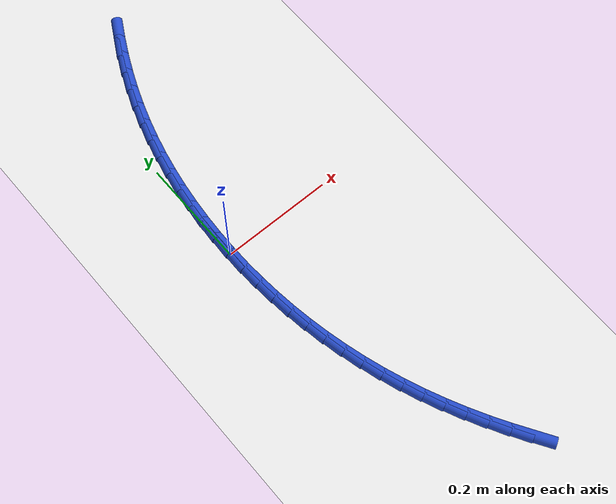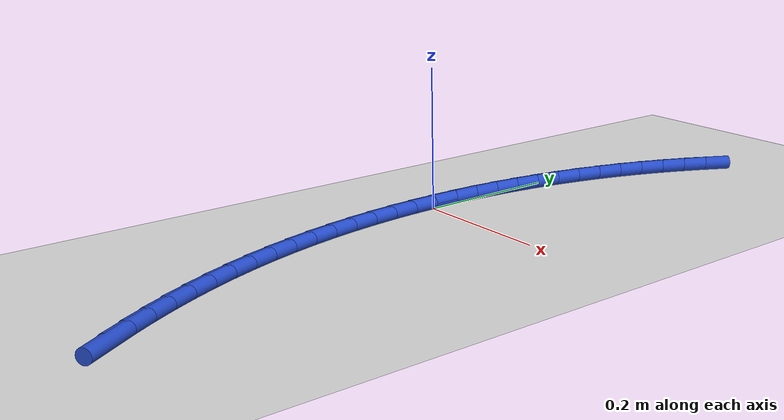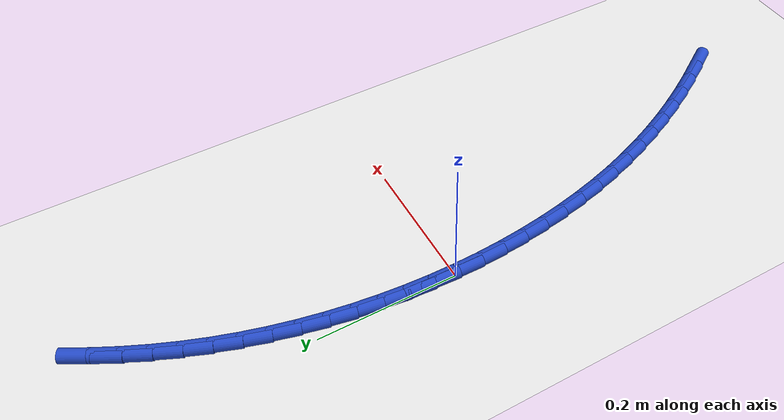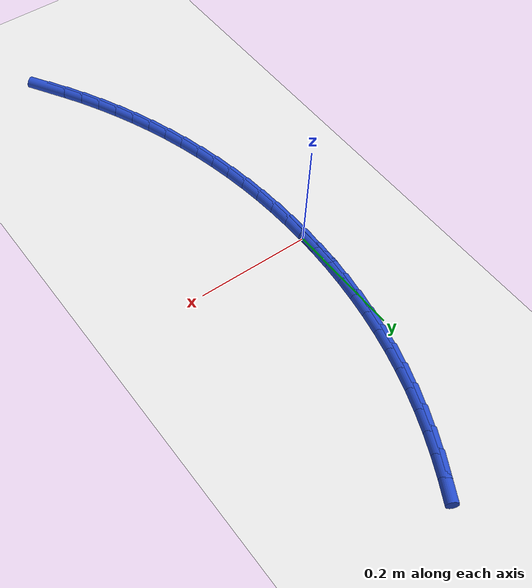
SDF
<sdf version="1.6">
 <world name="default">
  <model name="ground_plane">
   <static>1</static>
   <link name="link">
    <collision name="collision">
     <geometry><plane><normal>0 0 1</normal><size>100 100</size></plane></geometry>
     <surface><friction><ode><mu>100</mu><mu2>50</mu2></ode></friction></surface>
    </collision>
    <visual name="visual">
     <cast_shadows>0</cast_shadows>
     <geometry><plane><normal>0 0 1</normal><size>100 100</size></plane></geometry>
     <material>
      <script><uri>file://media/materials/scripts/gazebo.material</uri><name>Gazebo/WhiteGlow</name></script>
     </material>
    </visual>
   </link>
  </model>
  <model name="line">
   <link name="link_0">
    <pose>-2.7755575615628914e-17 6.938893903907228e-17 0.01 0 1.57 1.554966024899362</pose>
    <collision name="collision">
     <geometry><cylinder><radius>0.01</radius><length>0.08</length></cylinder></geometry>
    </collision>
    <visual name="visual">
     <material>
      <script><name>Gazebo/Blue</name><uri>file://media/materials/scripts/gazebo.material</uri></script>
     </material>
     <geometry><cylinder><radius>0.01</radius><length>0.08</length></cylinder></geometry>
    </visual>
   </link>
   <link name="link_1">
    <pose>0.0005712090992517886 0.03608025845099343 0.01 0 1.57 1.519783732723637</pose>
    <collision name="collision">
     <geometry><cylinder><radius>0.01</radius><length>0.08</length></cylinder></geometry>
    </collision>
    <visual name="visual">
     <material>
      <script><name>Gazebo/Blue</name><uri>file://media/materials/scripts/gazebo.material</uri></script>
     </material>
     <geometry><cylinder><radius>0.01</radius><length>0.08</length></cylinder></geometry>
    </visual>
   </link>
   <link name="link_2">
    <pose>0.0024117978563944482 0.07213002096325959 0.01 0 1.57 1.484111538467074</pose>
    <collision name="collision">
     <geometry><cylinder><radius>0.01</radius><length>0.08</length></cylinder></geometry>
    </collision>
    <visual name="visual">
     <material>
      <script><name>Gazebo/Blue</name><uri>file://media/materials/scripts/gazebo.material</uri></script>
     </material>
     <geometry><cylinder><radius>0.01</radius><length>0.08</length></cylinder></geometry>
    </visual>
   </link>
   <link name="link_3">
    <pose>0.005537018427434216 0.10809237154542371 0.01 0 1.57 1.4478751126077472</pose>
    <collision name="collision">
     <geometry><cylinder><radius>0.01</radius><length>0.08</length></cylinder></geometry>
    </collision>
    <visual name="visual">
     <material>
      <script><name>Gazebo/Blue</name><uri>file://media/materials/scripts/gazebo.material</uri></script>
     </material>
     <geometry><cylinder><radius>0.01</radius><length>0.08</length></cylinder></geometry>
    </visual>
   </link>
   <link name="link_4">
    <pose>0.009962122968377368 0.14391039420611088 0.01 0 1.57 1.4110036401615895</pose>
    <collision name="collision">
     <geometry><cylinder><radius>0.01</radius><length>0.08</length></cylinder></geometry>
    </collision>
    <visual name="visual">
     <material>
      <script><name>Gazebo/Blue</name><uri>file://media/materials/scripts/gazebo.material</uri></script>
     </material>
     <geometry><cylinder><radius>0.01</radius><length>0.08</length></cylinder></geometry>
    </visual>
   </link>
   <link name="link_5">
    <pose>0.01570236363523017 0.17952717295394618 0.01 0 1.57 1.3734305395378306</pose>
    <collision name="collision">
     <geometry><cylinder><radius>0.01</radius><length>0.08</length></cylinder></geometry>
    </collision>
    <visual name="visual">
     <material>
      <script><name>Gazebo/Blue</name><uri>file://media/materials/scripts/gazebo.material</uri></script>
     </material>
     <geometry><cylinder><radius>0.01</radius><length>0.08</length></cylinder></geometry>
    </visual>
   </link>
   <link name="link_6">
    <pose>0.02277299258399889 0.21488579179755463 0.01 0 1.57 1.3350943428944009</pose>
    <collision name="collision">
     <geometry><cylinder><radius>0.01</radius><length>0.08</length></cylinder></geometry>
    </collision>
    <visual name="visual">
     <material>
      <script><name>Gazebo/Blue</name><uri>file://media/materials/scripts/gazebo.material</uri></script>
     </material>
     <geometry><cylinder><radius>0.01</radius><length>0.08</length></cylinder></geometry>
    </visual>
   </link>
   <link name="link_7">
    <pose>0.03118926197068978 0.24992933474556134 0.01 0 1.57 1.2959397444328438</pose>
    <collision name="collision">
     <geometry><cylinder><radius>0.01</radius><length>0.08</length></cylinder></geometry>
    </collision>
    <visual name="visual">
     <material>
      <script><name>Gazebo/Blue</name><uri>file://media/materials/scripts/gazebo.material</uri></script>
     </material>
     <geometry><cylinder><radius>0.01</radius><length>0.08</length></cylinder></geometry>
    </visual>
   </link>
   <link name="link_8">
    <pose>0.04096642395130913 0.2846008858065915 0.01 0 1.57 1.2559188156809742</pose>
    <collision name="collision">
     <geometry><cylinder><radius>0.01</radius><length>0.08</length></cylinder></geometry>
    </collision>
    <visual name="visual">
     <material>
      <script><name>Gazebo/Blue</name><uri>file://media/materials/scripts/gazebo.material</uri></script>
     </material>
     <geometry><cylinder><radius>0.01</radius><length>0.08</length></cylinder></geometry>
    </visual>
   </link>
   <link name="link_9">
    <pose>0.052119730681863215 0.31884352898927004 0.01 0 1.57 1.2152198327130048</pose>
    <collision name="collision">
     <geometry><cylinder><radius>0.01</radius><length>0.08</length></cylinder></geometry>
    </collision>
    <visual name="visual">
     <material>
      <script><name>Gazebo/Blue</name><uri>file://media/materials/scripts/gazebo.material</uri></script>
     </material>
     <geometry><cylinder><radius>0.01</radius><length>0.08</length></cylinder></geometry>
    </visual>
   </link>
   <link name="link_10">
    <pose>0.06465711452558207 0.3526041667671321 0.01 0 1.57 1.1753621489340544</pose>
    <collision name="collision">
     <geometry><cylinder><radius>0.01</radius><length>0.08</length></cylinder></geometry>
    </collision>
    <visual name="visual">
     <material>
      <script><name>Gazebo/Blue</name><uri>file://media/materials/scripts/gazebo.material</uri></script>
     </material>
     <geometry><cylinder><radius>0.01</radius><length>0.08</length></cylinder></geometry>
    </visual>
   </link>
   <link name="link_11">
    <pose>0.07853695887582197 0.38585554947697476 0.01 0 1.57 1.1369782166927267</pose>
    <collision name="collision">
     <geometry><cylinder><radius>0.01</radius><length>0.08</length></cylinder></geometry>
    </collision>
    <visual name="visual">
     <material>
      <script><name>Gazebo/Blue</name><uri>file://media/materials/scripts/gazebo.material</uri></script>
     </material>
     <geometry><cylinder><radius>0.01</radius><length>0.08</length></cylinder></geometry>
    </visual>
   </link>
   <link name="link_12">
    <pose>0.09369710207800608 0.41858114504651694 0.01 0 1.57 1.1000509516635464</pose>
    <collision name="collision">
     <geometry><cylinder><radius>0.01</radius><length>0.08</length></cylinder></geometry>
    </collision>
    <visual name="visual">
     <material>
      <script><name>Gazebo/Blue</name><uri>file://media/materials/scripts/gazebo.material</uri></script>
     </material>
     <geometry><cylinder><radius>0.01</radius><length>0.08</length></cylinder></geometry>
    </visual>
   </link>
   <link name="link_13">
    <pose>0.11007531630858591 0.4507644559213801 0.01 0 1.57 1.0645469594919728</pose>
    <collision name="collision">
     <geometry><cylinder><radius>0.01</radius><length>0.08</length></cylinder></geometry>
    </collision>
    <visual name="visual">
     <material>
      <script><name>Gazebo/Blue</name><uri>file://media/materials/scripts/gazebo.material</uri></script>
     </material>
     <geometry><cylinder><radius>0.01</radius><length>0.08</length></cylinder></geometry>
    </visual>
   </link>
   <link name="link_174">
    <pose>0.16274000043594944 -0.545805390551361 0.01 0 1.57 -1.013572906376542</pose>
    <collision name="collision">
     <geometry><cylinder><radius>0.01</radius><length>0.08</length></cylinder></geometry>
    </collision>
    <visual name="visual">
     <material>
      <script><name>Gazebo/Blue</name><uri>file://media/materials/scripts/gazebo.material</uri></script>
     </material>
     <geometry><cylinder><radius>0.01</radius><length>0.08</length></cylinder></geometry>
    </visual>
   </link>
   <link name="link_175">
    <pose>0.1437149610362139 -0.5152719336722976 0.01 0 1.57 -1.0472756967551118</pose>
    <collision name="collision">
     <geometry><cylinder><radius>0.01</radius><length>0.08</length></cylinder></geometry>
    </collision>
    <visual name="visual">
     <material>
      <script><name>Gazebo/Blue</name><uri>file://media/materials/scripts/gazebo.material</uri></script>
     </material>
     <geometry><cylinder><radius>0.01</radius><length>0.08</length></cylinder></geometry>
    </visual>
   </link>
   <link name="link_176">
    <pose>0.12566901760827084 -0.4840098011796598 0.01 0 1.57 -1.0813757489117943</pose>
    <collision name="collision">
     <geometry><cylinder><radius>0.01</radius><length>0.08</length></cylinder></geometry>
    </collision>
    <visual name="visual">
     <material>
      <script><name>Gazebo/Blue</name><uri>file://media/materials/scripts/gazebo.material</uri></script>
     </material>
     <geometry><cylinder><radius>0.01</radius><length>0.08</length></cylinder></geometry>
    </visual>
   </link>
   <link name="link_177">
    <pose>0.10866026124913412 -0.4520771164240929 0.01 0 1.57 -1.1160142192103377</pose>
    <collision name="collision">
     <geometry><cylinder><radius>0.01</radius><length>0.08</length></cylinder></geometry>
    </collision>
    <visual name="visual">
     <material>
      <script><name>Gazebo/Blue</name><uri>file://media/materials/scripts/gazebo.material</uri></script>
     </material>
     <geometry><cylinder><radius>0.01</radius><length>0.08</length></cylinder></geometry>
    </visual>
   </link>
   <link name="link_178">
    <pose>0.09274678305581759 -0.4195320027562422 0.01 0 1.57 -1.1513300260748467</pose>
    <collision name="collision">
     <geometry><cylinder><radius>0.01</radius><length>0.08</length></cylinder></geometry>
    </collision>
    <visual name="visual">
     <material>
      <script><name>Gazebo/Blue</name><uri>file://media/materials/scripts/gazebo.material</uri></script>
     </material>
     <geometry><cylinder><radius>0.01</radius><length>0.08</length></cylinder></geometry>
    </visual>
   </link>
   <link name="link_179">
    <pose>0.07798667412533537 -0.3864325835267541 0.01 0 1.57 -1.187460075852762</pose>
    <collision name="collision">
     <geometry><cylinder><radius>0.01</radius><length>0.08</length></cylinder></geometry>
    </collision>
    <visual name="visual">
     <material>
      <script><name>Gazebo/Blue</name><uri>file://media/materials/scripts/gazebo.material</uri></script>
     </material>
     <geometry><cylinder><radius>0.01</radius><length>0.08</length></cylinder></geometry>
    </visual>
   </link>
   <link name="link_180">
    <pose>0.06443802555470073 -0.35283698208627257 0.01 0 1.57 -1.2245378513481633</pose>
    <collision name="collision">
     <geometry><cylinder><radius>0.01</radius><length>0.08</length></cylinder></geometry>
    </collision>
    <visual name="visual">
     <material>
      <script><name>Gazebo/Blue</name><uri>file://media/materials/scripts/gazebo.material</uri></script>
     </material>
     <geometry><cylinder><radius>0.01</radius><length>0.08</length></cylinder></geometry>
    </visual>
   </link>
   <link name="link_181">
    <pose>0.05215887291803072 -0.3188033059950069 0.01 0 1.57 -1.2622817753735918</pose>
    <collision name="collision">
     <geometry><cylinder><radius>0.01</radius><length>0.08</length></cylinder></geometry>
    </collision>
    <visual name="visual">
     <material>
      <script><name>Gazebo/Blue</name><uri>file://media/materials/scripts/gazebo.material</uri></script>
     </material>
     <geometry><cylinder><radius>0.01</radius><length>0.08</length></cylinder></geometry>
    </visual>
   </link>
   <link name="link_182">
    <pose>0.0411900122803991 -0.2843847599821897 0.01 0 1.57 -1.2997632562287225</pose>
    <collision name="collision">
     <geometry><cylinder><radius>0.01</radius><length>0.08</length></cylinder></geometry>
    </collision>
    <visual name="visual">
     <material>
      <script><name>Gazebo/Blue</name><uri>file://media/materials/scripts/gazebo.material</uri></script>
     </material>
     <geometry><cylinder><radius>0.01</radius><length>0.08</length></cylinder></geometry>
    </visual>
   </link>
   <link name="link_183">
    <pose>0.03153066278201712 -0.24962272450557457 0.01 0 1.57 -1.336844281815667</pose>
    <collision name="collision">
     <geometry><cylinder><radius>0.01</radius><length>0.08</length></cylinder></geometry>
    </collision>
    <visual name="visual">
     <material>
      <script><name>Gazebo/Blue</name><uri>file://media/materials/scripts/gazebo.material</uri></script>
     </material>
     <geometry><cylinder><radius>0.01</radius><length>0.08</length></cylinder></geometry>
    </visual>
   </link>
   <link name="link_184">
    <pose>0.023173901468214127 -0.21455683324155497 0.01 0 1.57 -1.3735348518202637</pose>
    <collision name="collision">
     <geometry><cylinder><radius>0.01</radius><length>0.08</length></cylinder></geometry>
    </collision>
    <visual name="visual">
     <material>
      <script><name>Gazebo/Blue</name><uri>file://media/materials/scripts/gazebo.material</uri></script>
     </material>
     <geometry><cylinder><radius>0.01</radius><length>0.08</length></cylinder></geometry>
    </visual>
   </link>
   <link name="link_185">
    <pose>0.01611280538431952 -0.1792267198665249 0.01 0 1.57 -1.4098492521555244</pose>
    <collision name="collision">
     <geometry><cylinder><radius>0.01</radius><length>0.08</length></cylinder></geometry>
    </collision>
    <visual name="visual">
     <material>
      <script><name>Gazebo/Blue</name><uri>file://media/materials/scripts/gazebo.material</uri></script>
     </material>
     <geometry><cylinder><radius>0.01</radius><length>0.08</length></cylinder></geometry>
    </visual>
   </link>
   <link name="link_186">
    <pose>0.010340451575662761 -0.1436720180568788 0.01 0 1.57 -1.445805607862557</pose>
    <collision name="collision">
     <geometry><cylinder><radius>0.01</radius><length>0.08</length></cylinder></geometry>
    </collision>
    <visual name="visual">
     <material>
      <script><name>Gazebo/Blue</name><uri>file://media/materials/scripts/gazebo.material</uri></script>
     </material>
     <geometry><cylinder><radius>0.01</radius><length>0.08</length></cylinder></geometry>
    </visual>
   </link>
   <link name="link_187">
    <pose>0.005849917087572976 -0.10793236148900896 0.01 0 1.57 -1.4814254395083142</pose>
    <collision name="collision">
     <geometry><cylinder><radius>0.01</radius><length>0.08</length></cylinder></geometry>
    </collision>
    <visual name="visual">
     <material>
      <script><name>Gazebo/Blue</name><uri>file://media/materials/scripts/gazebo.material</uri></script>
     </material>
     <geometry><cylinder><radius>0.01</radius><length>0.08</length></cylinder></geometry>
    </visual>
   </link>
   <link name="link_188">
    <pose>0.002634278965379675 -0.07204738383931004 0.01 0 1.57 -1.5167332306723542</pose>
    <collision name="collision">
     <geometry><cylinder><radius>0.01</radius><length>0.08</length></cylinder></geometry>
    </collision>
    <visual name="visual">
     <material>
      <script><name>Gazebo/Blue</name><uri>file://media/materials/scripts/gazebo.material</uri></script>
     </material>
     <geometry><cylinder><radius>0.01</radius><length>0.08</length></cylinder></geometry>
    </visual>
   </link>
   <link name="link_189">
    <pose>0.0006866142544122147 -0.036056718784175754 0.01 0 1.57 -1.5517560119248939</pose>
    <collision name="collision">
     <geometry><cylinder><radius>0.01</radius><length>0.08</length></cylinder></geometry>
    </collision>
    <visual name="visual">
     <material>
      <script><name>Gazebo/Blue</name><uri>file://media/materials/scripts/gazebo.material</uri></script>
     </material>
     <geometry><cylinder><radius>0.01</radius><length>0.08</length></cylinder></geometry>
    </visual>
   </link>
   <link name="link_190">
    <pose>-2.949029909160572e-17 1.3183898417423734e-16 0.01 0 1.57 1.5550696888733946</pose>
    <collision name="collision">
     <geometry><cylinder><radius>0.01</radius><length>0.08</length></cylinder></geometry>
    </collision>
    <visual name="visual">
     <material>
      <script><name>Gazebo/Blue</name><uri>file://media/materials/scripts/gazebo.material</uri></script>
     </material>
     <geometry><cylinder><radius>0.01</radius><length>0.08</length></cylinder></geometry>
    </visual>
   </link>
   <link name="link_191">
    <pose>0.0005675132474723104 0.036083138836823764 0.01 0 1.57 1.5550696888733948</pose>
    <collision name="collision">
     <geometry><cylinder><radius>0.01</radius><length>0.08</length></cylinder></geometry>
    </collision>
    <visual name="visual">
     <material>
      <script><name>Gazebo/Blue</name><uri>file://media/materials/scripts/gazebo.material</uri></script>
     </material>
     <geometry><cylinder><radius>0.01</radius><length>0.08</length></cylinder></geometry>
    </visual>
   </link>
  </model>
 </world>
</sdf>
